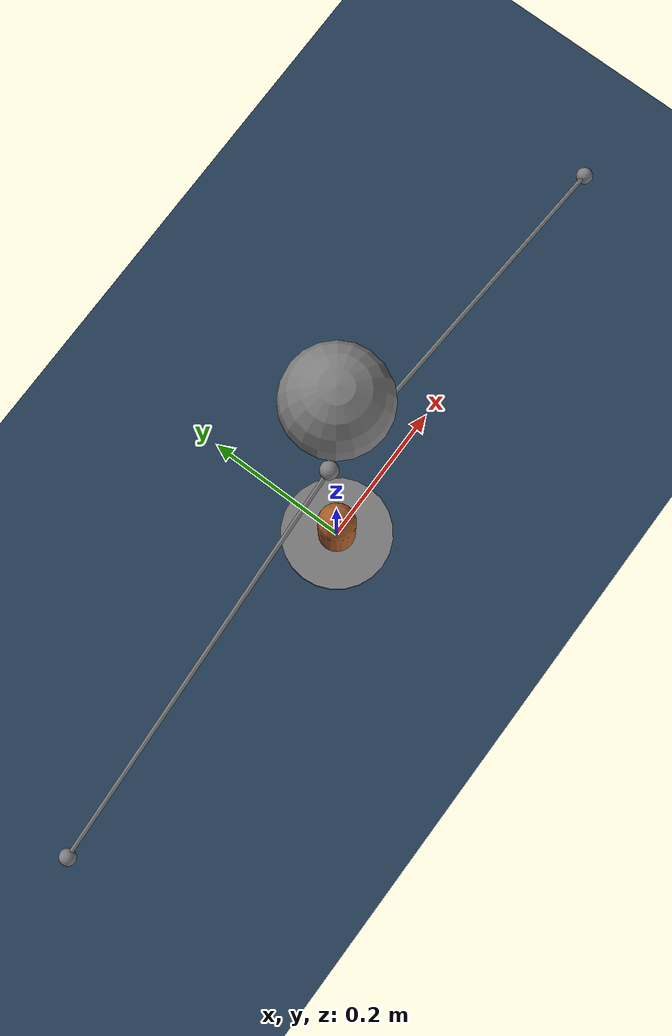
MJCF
<mujoco model="initial_humanoid">
  <!-- SET GRAVITY TO POINT DOWN -->
  <option gravity="0 0 -9.81">
    <!-- FLAG TO ADD NOISE TO SENSORS -->
    <flag sensornoise="enable"/>
  </option>

  <!-- VISUAL SETUP STUFF THAT I DON'T FULLY UNDERSTAND YET -->
  <visual>
    <map zfar="30"/>
    <rgba haze="0.15 0.25 0.35 1" />
  </visual>

  <!-- DON'T KNOW WHAT THIS DOES YET -->
  <statistic center="0 0 0.7"/>

  <!-- Set up default texture and material parameters for the bodies in the simulation and the ground in the simulation -->
  <asset>
    <!-- this makes the sky blue in the simulation: -->
    <texture type="skybox" builtin="gradient" rgb1=".3 .5 .7" rgb2="0 0 0" width="32" height="512"/>

    <!-- configure the texture and material of the default body created in a simulation -->
    <texture name="body" type="cube" builtin="flat" mark="cross" width="128" height="128" rgb1="0.8 0.6 0.4" rgb2="0.8 0.6 0.4" markrgb="1 1 1" random="0.01"/>
    <material name="body" texture="body" texuniform="true" rgba="0.8 0.6 .4 1"/>

    <!-- configure the default texture and material for the ground of the simulation -->
    <texture name="grid" type="2d" builtin="checker" width="512" height="512" rgb1=".1 .2 .3" rgb2=".2 .3 .4"/>
    <material name="grid" texture="grid" texrepeat="1 1" texuniform="true" reflectance=".2"/>

    <!-- create triangle mesh to represent foot -->
    <mesh name="foot_mesh" vertex="-1 0 0  -1 0 0  1 0 0  0 -1 0  0 1 0  0.25 0 0.5"/>
  </asset>

  <!-- SECTION TO DEFINE GEOMETRIES AND JOINTS -->
  <default>

    <default class="body">

      <!-- geoms -->
      <!-- ALL GEOMETRIES ARE CAPSULE TYPE -->
      <geom type="capsule" mass="10" condim="1" friction="0.7 0.005 0.0001" solimp=".9 .99 .003" solref=".015 1" material="body" group="1"/>

      <!-- SHIN GEOMETRY -->
      <default class="shin">
        <geom fromto="0 0 0.1 0 0 0" size = "0.025"/>
      </default>

    </default>
  </default>

    <!-- DEFINE THE LEG, STARTING FROM THE WORLDBODY FRAME? -->
	<worldbody>
      <!-- DEFINE THE FLOOR IN THE ENVIRONMENT -->
      <geom name="ground" size="0 0 .05" type="plane" material="grid" condim="3" friction='0.99 0.99 0.99' solimp=".9 .99 .003" solref=".015 1"/>

      <!-- LIGHT SETTING -->
      <light name="spotlight" mode="targetbodycom" target="foot" diffuse=".8 .8 .8" specular="0.3 0.3 0.3" pos="0 -6 4" cutoff="30"/>

        <!-- BODY FOR SHIN; CAN HAVE MAX 6-DOF -->
        <body name="foot" >

          <!-- Create prismatic joints to constrain motion along the x and z directions -->
          <joint name="rotation_dof" type="hinge" axis="0 -1 0"/>
          <joint type="slide" name="joint_slide_x" axis="-1 0 0"/>
          <joint type="slide" name="joint_slide_z" axis="0 0 1"/>

          <geom type="mesh" mesh="foot_mesh" name="foot_geom" solref=".015 1" solimp=".9 .99 .003" rgba="0.8 0.6 .4 0"/>

          <site name="front_foot_force_sensor_site" type="cylinder" size="0.075" rgba="0.5 0.5 0.5 1"/>
          <site name="back_foot_force_sensor_site" type="cylinder" size="0.075" rgba="0.5 0.5 0.5 1"/>

          <site name="front_foot_site" pos="-0.5 0 0.25" size="0.01 0.01 0.01"/>
          <site name="back_foot_site" pos="0.5 0 0.25" size="0.01 0.01 0.01"/>

          <body name="shin_body">

          <!-- Create a hinge joint to constrain rotation around the y-axis (normal to the x-z plane) -->
            <joint type="hinge" name="ankle_hinge" axis="0 -1 0" damping="1"/>
            <geom name="shin_geom" class="shin"/>
            <geom name="m_body" type="sphere" size="0.05" pos="0 0 0.75"/>
            <site name="front_shin_site" pos="-0.0125 0 0.5" size="0.01 0.01 0.01"/>
            <site name="back_shin_site" pos="0.0125 0 0.5" size="0.01 0.01 0.01"/>

          </body>

        </body>
      <!-- END OF DEFINING THE LEG IN 3D SPACE -->
	</worldbody>

  <!-- Define the tendon -->
  <tendon>
    <spatial name="front_tendon" limited="true" range="0.1 0.7" width="0.0025" springlength="-1" stiffness="1">
      <site site="front_foot_site"/>
      <site site="front_shin_site"/>
    </spatial>
  </tendon>

  <tendon>
    <spatial name="back_tendon" limited="true" range="0.1 0.7" width="0.0025" springlength="-1" stiffness="1">
      <site site="back_foot_site"/>
      <site site="back_shin_site"/>
    </spatial>
  </tendon>

  <contact>
    <pair name="foot_ground_friction" geom1="foot_geom" geom2="ground" solref="0.015 1" solimp="0.99 .99 .003" friction=".99 .99 .99"/>
    <pair name="longlink_ground_friction" geom1="shin_geom" geom2="ground" solref="0.015 1" solimp="0.99 .99 .003" friction=".99 .99 .99"/>
  </contact>

    <!-- ACTUATORS FOR THE ANKLE JOINTS -->
	<actuator>
      <muscle name="front_muscle" tendon="front_tendon" force="1200"/>
      <muscle name="back_muscle" tendon="back_tendon" force="1200"/>
  </actuator>

    <!-- SENSORS FOR THE ANKLE JOINTS -->
	<sensor>
      <jointpos joint='ankle_hinge'/>
      <touch site='front_foot_force_sensor_site'/>
      <touch site='back_foot_force_sensor_site'/>
	</sensor>

</mujoco>
